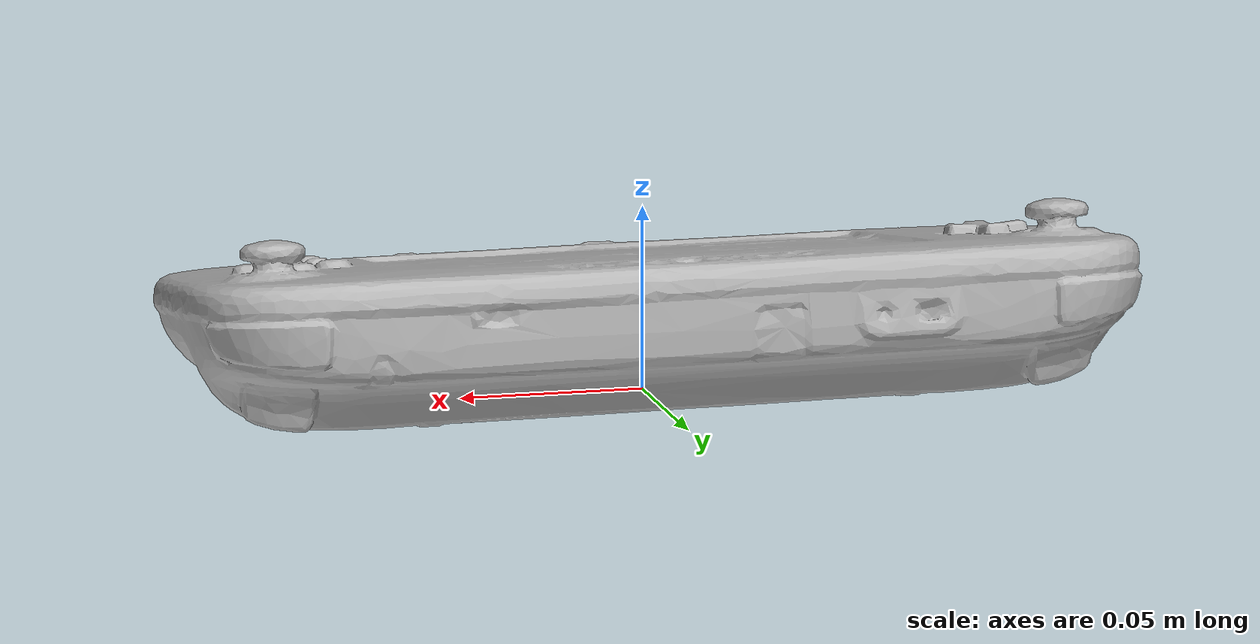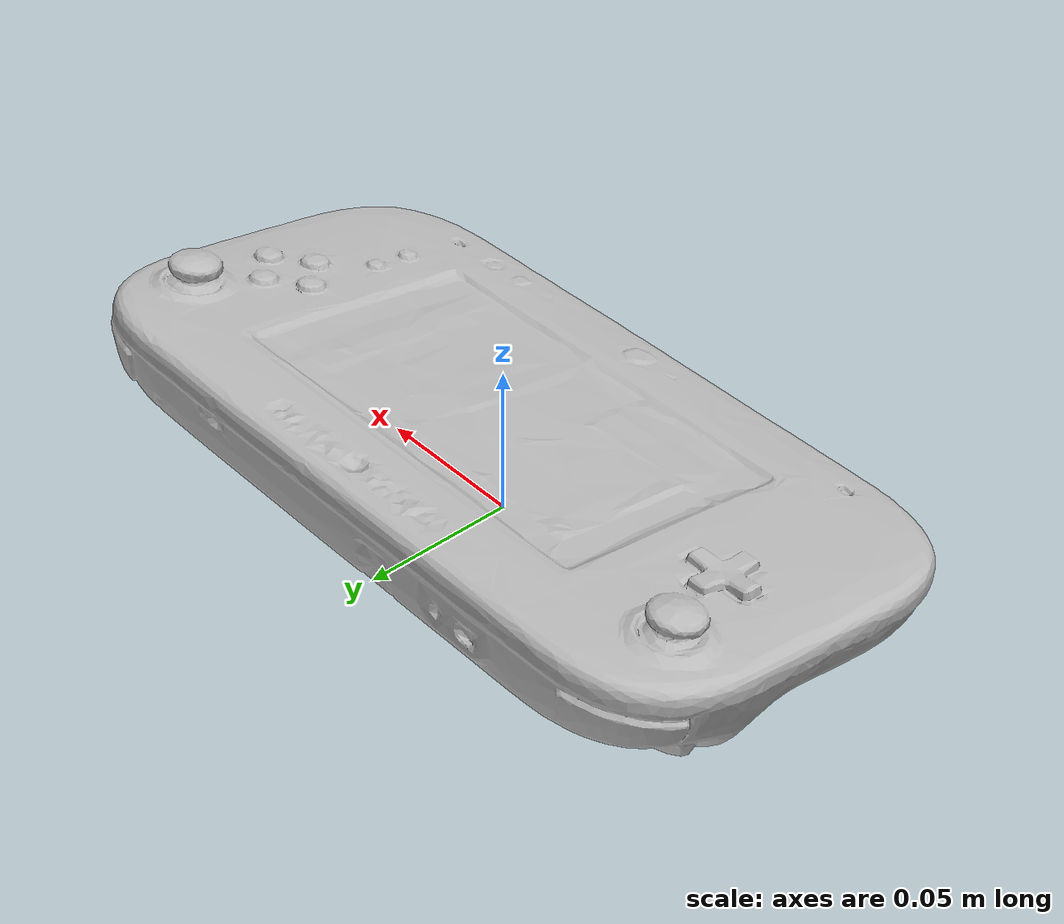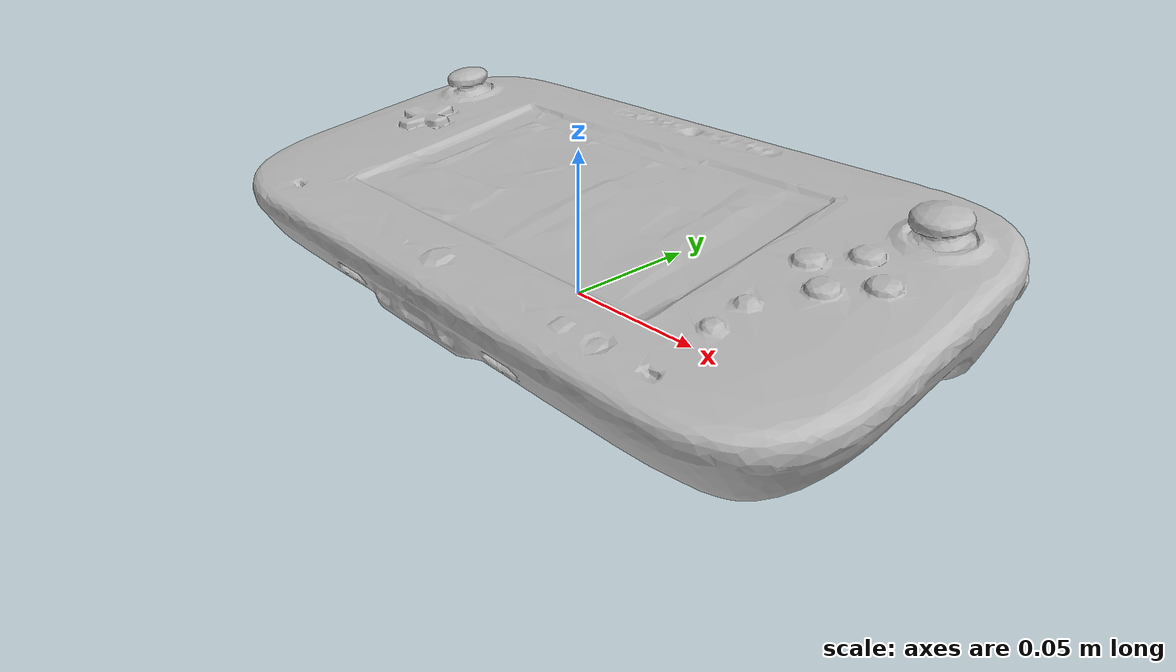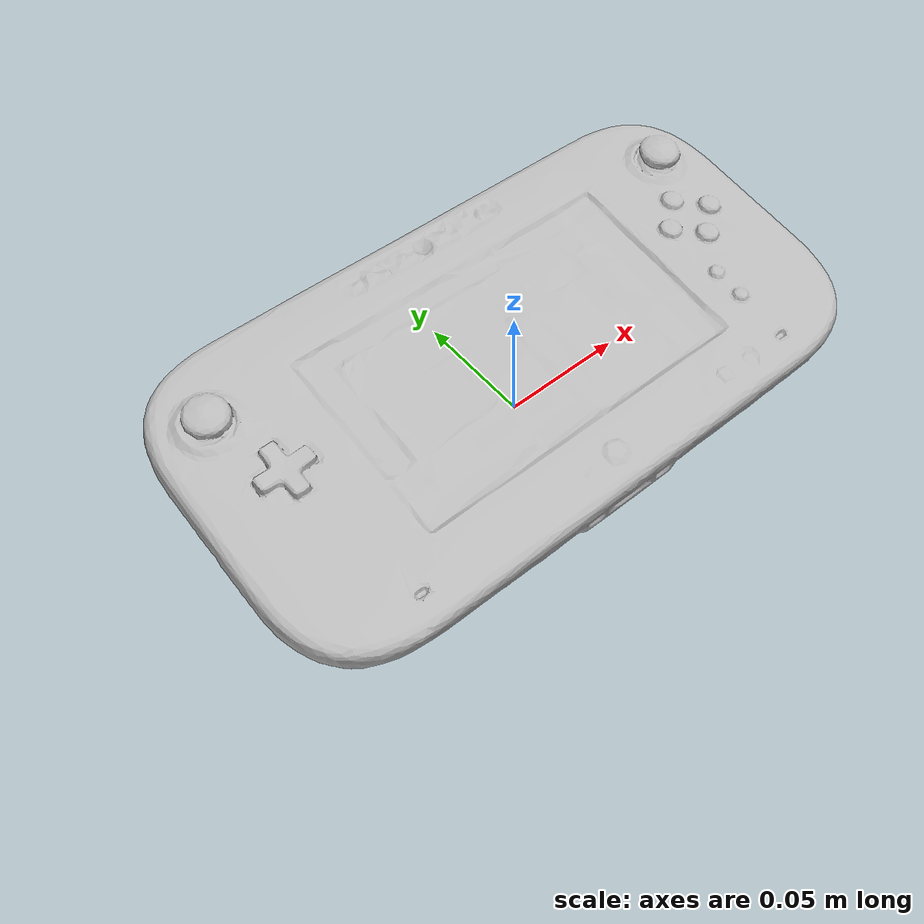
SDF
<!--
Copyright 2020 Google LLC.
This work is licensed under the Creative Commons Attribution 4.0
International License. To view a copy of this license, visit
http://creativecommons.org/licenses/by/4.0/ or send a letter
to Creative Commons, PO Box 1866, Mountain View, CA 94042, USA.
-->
<?xml version="1.0" ?>
<sdf version="1.6">
  <model name="Super_Mario_3D_World_Deluxe_Set">
    <link name="link_0">
      <visual name="visual">
        <geometry>
          <mesh>
            <uri>meshes/model.obj</uri>
          </mesh>
        </geometry>
      </visual>
      <collision name="collision_0">
        <geometry>
          <mesh>
            <uri>meshes/model.obj</uri>
          </mesh>
        </geometry>
      </collision>
    </link>
  </model>
</sdf>
